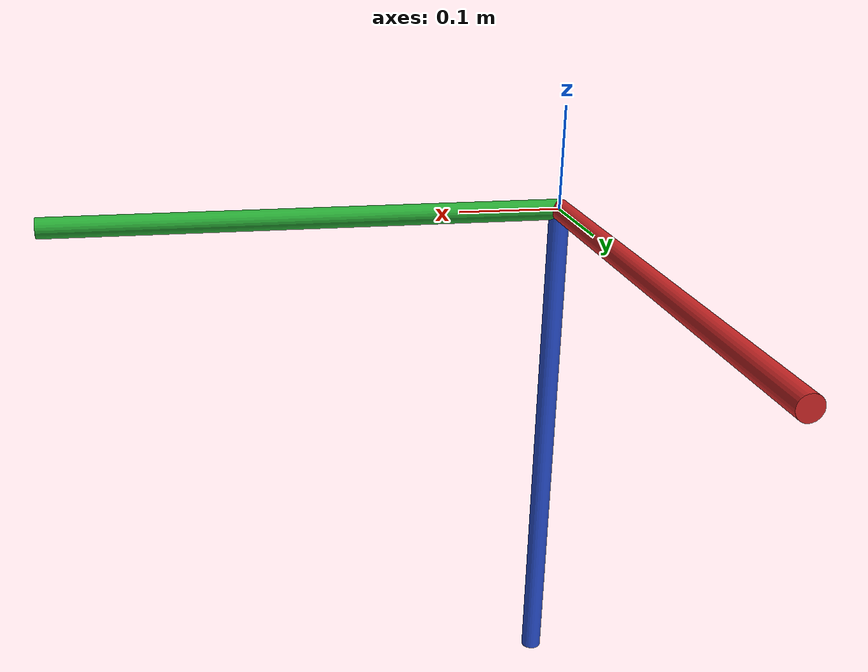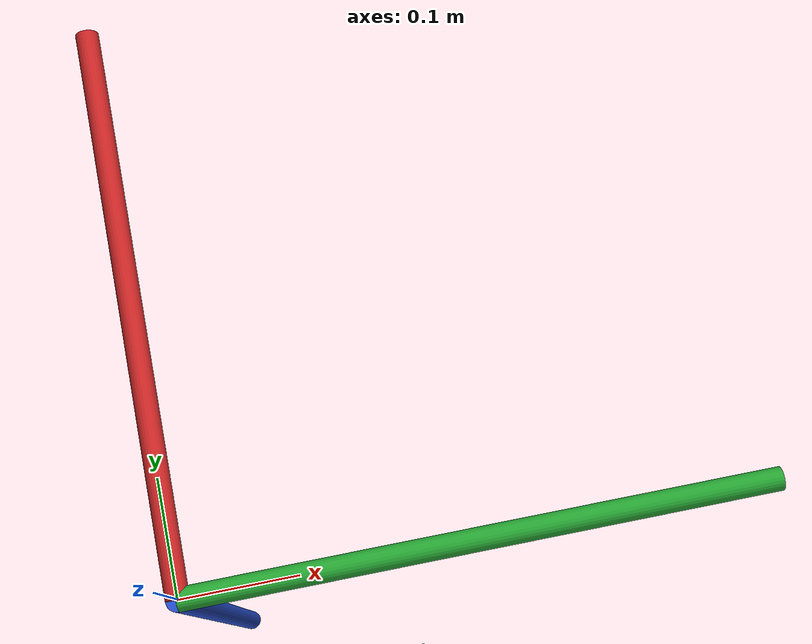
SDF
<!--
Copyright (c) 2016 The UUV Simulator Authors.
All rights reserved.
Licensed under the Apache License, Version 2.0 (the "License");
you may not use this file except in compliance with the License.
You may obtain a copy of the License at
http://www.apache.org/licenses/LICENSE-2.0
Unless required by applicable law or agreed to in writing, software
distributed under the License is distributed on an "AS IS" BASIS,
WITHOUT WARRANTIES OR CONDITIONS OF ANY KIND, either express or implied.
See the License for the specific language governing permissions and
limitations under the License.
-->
<sdf version="1.4">
 <world name="oceans_waves">
  <physics name="default_physics" default="true" type="ode">
   <max_step_size>0.002</max_step_size>
   <real_time_factor>1</real_time_factor>
   <real_time_update_rate>500</real_time_update_rate>
  </physics>
  <scene>
   <ambient>0.01 0.01 0.01 1.0</ambient>
   <sky><clouds><speed>12</speed></clouds></sky>
   <shadows>1</shadows>
  </scene>
  <spherical_coordinates>
   <latitude_deg>56.71897669633431</latitude_deg>
   <longitude_deg>3.515625</longitude_deg>
  </spherical_coordinates>
  <light type="directional" name="sun1">
   <pose>50 0 150 0 0 0</pose>
   <diffuse>1 1 1 1</diffuse>
   <specular>.1 .1 .1 1</specular>
   <direction>0.3 0.3 -1</direction>
   <cast_shadows>false</cast_shadows>
  </light>
  <light type="directional" name="sun_diffuse">
   <pose>-50 0 -150 0 0 0</pose>
   <diffuse>0.6 0.6 0.6 1</diffuse>
   <specular>0 0 0 1</specular>
   <direction>-0.3 -0.3 -1</direction>
   <cast_shadows>false</cast_shadows>
  </light>
  <include><uri>model://ned_frame</uri></include>
  <model name="flat_seabed">
   <static>true</static>
   <link name="link">
    <collision name="collision"><geometry><box><size>100 100 1</size></box></geometry></collision>
    <visual name="visual">
     <geometry><box><size>100 100 1</size></box></geometry>
     <material>
      <script><uri>file://media/materials/scripts/gazebo.material</uri><name>Gazebo/Sand</name></script>
     </material>
    </visual>
    <pose>0 0 -50 0 0 0</pose>
   </link>
  </model>
  <plugin name="underwater_current_plugin" filename="libuuv_underwater_current_ros_plugin.so">
   <namespace>hydrodynamics</namespace>
   <constant_current>
    <topic>current_velocity</topic>
    <velocity><mean>0</mean><min>0</min><max>5</max><mu>0.0</mu><noiseAmp>0.0</noiseAmp></velocity>
    <horizontal_angle>
     <mean>0</mean>
     <min>-3.141592653589793238</min>
     <max>3.141592653589793238</max>
     <mu>0.0</mu>
     <noiseAmp>0.0</noiseAmp>
    </horizontal_angle>
    <vertical_angle>
     <mean>0</mean>
     <min>-3.141592653589793238</min>
     <max>3.141592653589793238</max>
     <mu>0.0</mu>
     <noiseAmp>0.0</noiseAmp>
    </vertical_angle>
   </constant_current>
  </plugin>
  <plugin name="sc_interface" filename="libuuv_sc_ros_interface_plugin.so"/>
 </world>
</sdf>

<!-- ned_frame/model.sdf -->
<sdf version='1.5'>
    <model name="world_ned">

      <pose>0 0 0 0 0 0</pose>
      <static>true</static>

      <link name="world_ned">
        <gravity>0</gravity>
        <pose>0 0 0 3.14159265359 0 1.5707963267948966</pose>

        <visual name="N_visual">
          <pose>0.25 0 0 1.5707963267948966 0 1.5707963267948966</pose>
          <geometry>
            <cylinder>
              <radius>0.01</radius>
              <length>0.5</length>
            </cylinder>
          </geometry>
          <material>
            <script>
              <uri>file://media/materials/scripts/gazebo.material</uri>
              <name>Gazebo/Red</name>
            </script>
          </material>
        </visual>

        <visual name="E_visual">
          <pose>0 0.25 0 1.5707963267948966 0 0</pose>
          <geometry>
            <cylinder>
              <radius>0.01</radius>
              <length>0.5</length>
            </cylinder>
          </geometry>
          <material>
            <script>
              <uri>file://media/materials/scripts/gazebo.material</uri>
              <name>Gazebo/Green</name>
            </script>
          </material>
        </visual>

        <visual name="D_visual">
          <pose>0 0 0.25 0 0 0</pose>
          <geometry>
            <cylinder>
              <radius>0.01</radius>
              <length>0.5</length>
            </cylinder>
          </geometry>
          <material>
            <script>
              <uri>file://media/materials/scripts/gazebo.material</uri>
              <name>Gazebo/Blue</name>
            </script>
          </material>
        </visual>
      </link>
    </model>
</sdf>
